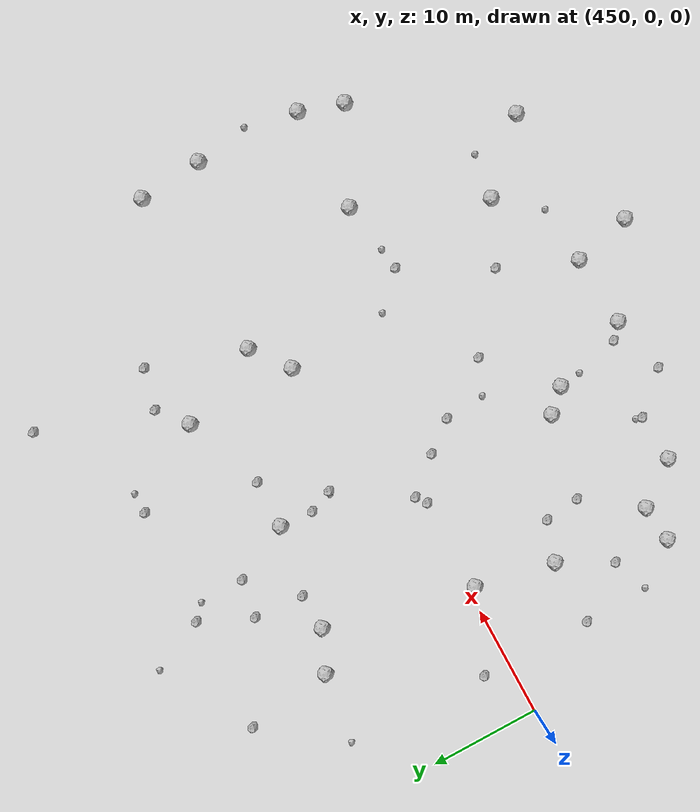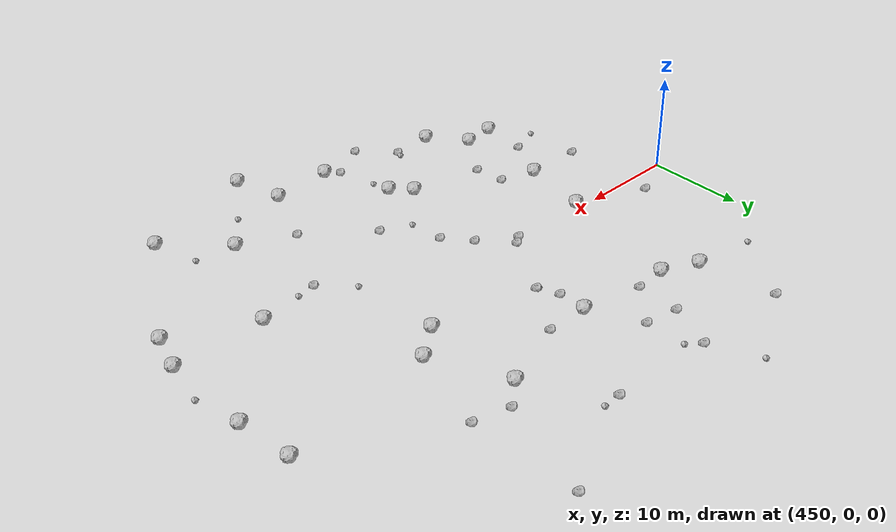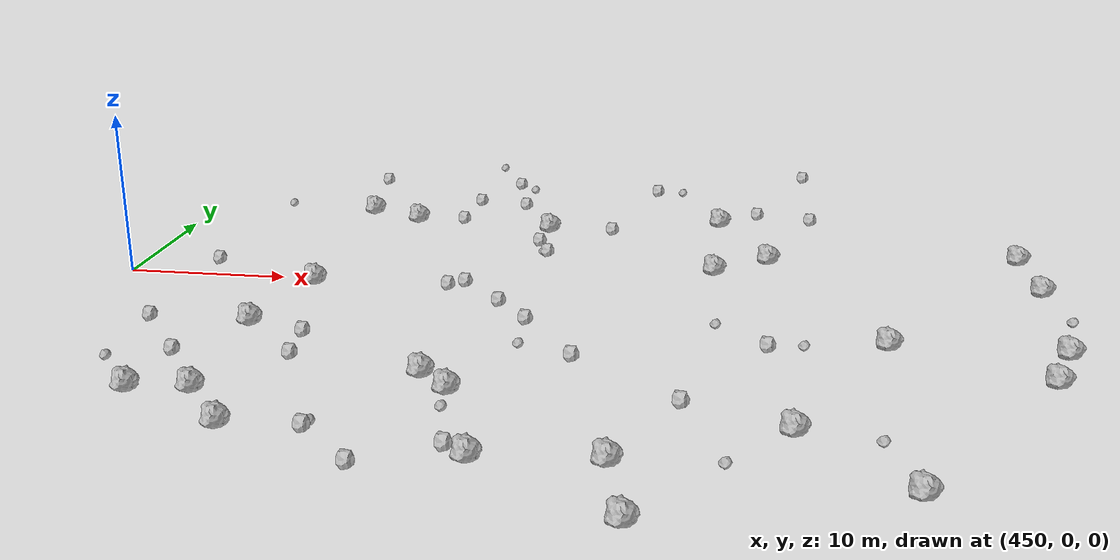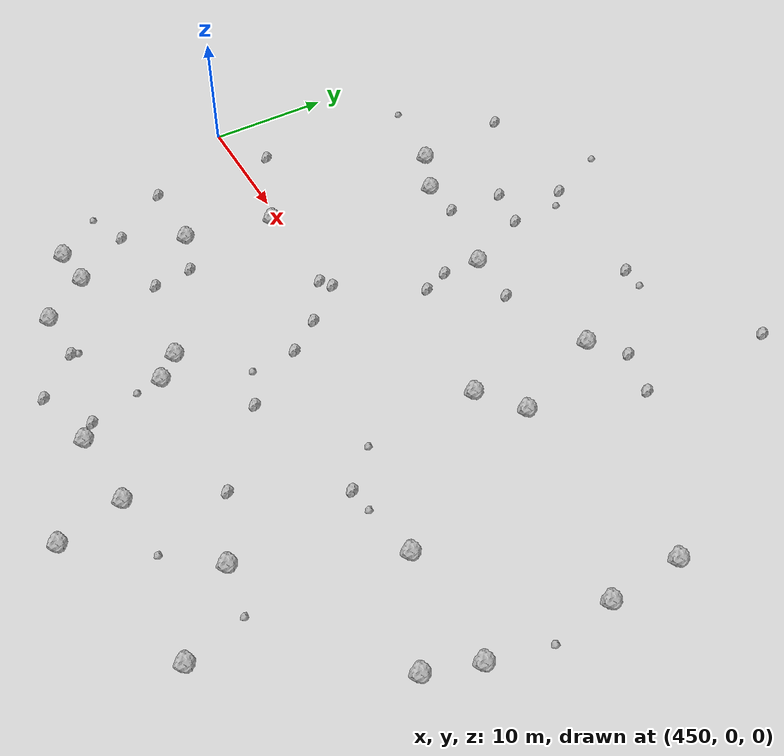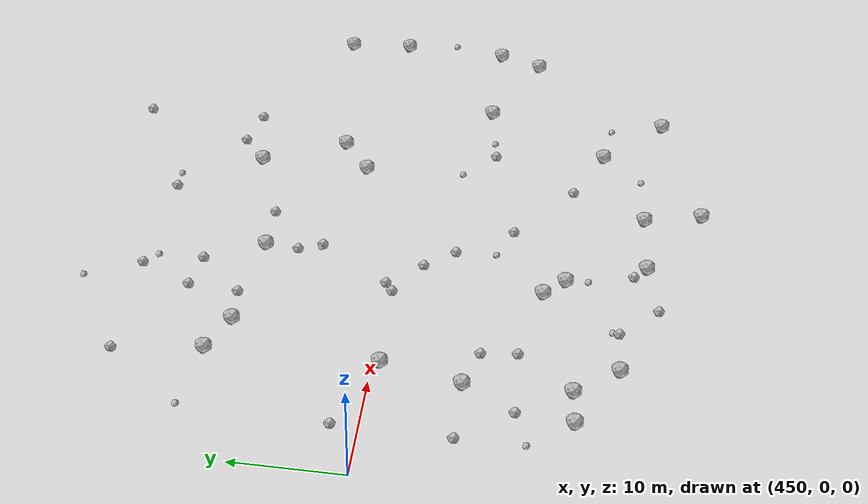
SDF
<sdf version="1.6">
 <world name="default">
  <include><uri>model://sun</uri></include>
  <model name="rock1_12_4">
   <include><uri>model://rock1</uri><pose>506.3340231970302 -6.802200655467537 0.5 0 0 0</pose></include>
  </model>
  <model name="rock1_12_5">
   <include><uri>model://rock1</uri><pose>460.76431565426384 -7.824293451113899 0.5 0 0 0</pose></include>
  </model>
  <model name="rock1_12_6">
   <include><uri>model://rock1</uri><pose>483.0821619662902 -22.322039942002686 0.5 0 0 0</pose></include>
  </model>
  <model name="rock1_12_7">
   <include><uri>model://rock1</uri><pose>506.6067973473855 2.944764519009368 0.5 0 0 0</pose></include>
  </model>
  <model name="rock1_12_8">
   <include><uri>model://rock1</uri><pose>461.16465595442673 -17.117069940406793 0.5 0 0 0</pose></include>
  </model>
  <model name="rock1_12_9">
   <include><uri>model://rock1</uri><pose>465.44990447105164 12.909858253755267 0.5 0 0 0</pose></include>
  </model>
  <model name="rock1_12_10">
   <include><uri>model://rock1</uri><pose>472.2902440631165 -13.733693562050323 0.5 0 0 0</pose></include>
  </model>
  <model name="rock1_12_11">
   <include><uri>model://rock1</uri><pose>491.52949810664325 -18.11376998937573 0.5 0 0 0</pose></include>
  </model>
  <model name="rock1_12_12">
   <include><uri>model://rock1</uri><pose>462.24759639134885 -0.6290936625679926 0.5 0 0 0</pose></include>
  </model>
  <model name="rock1_12_13">
   <include><uri>model://rock1</uri><pose>475.05254425884436 11.852452019932961 0.5 0 0 0</pose></include>
  </model>
  <model name="rock1_12_14">
   <include><uri>model://rock1</uri><pose>476.69639603079565 -22.75223849068803 0.5 0 0 0</pose></include>
  </model>
  <model name="rock1_12_15">
   <include><uri>model://rock1</uri><pose>505.01634048012335 -10.789863597331632 0.5 0 0 0</pose></include>
  </model>
  <model name="rock1_12_16">
   <include><uri>model://rock1</uri><pose>474.09728724323844 -15.615833692232448 0.5 0 0 0</pose></include>
  </model>
  <model name="rock1_12_17">
   <include><uri>model://rock1</uri><pose>464.0259234585095 -20.882900097273918 0.5 0 0 0</pose></include>
  </model>
  <model name="rock1_12_18">
   <include><uri>model://rock1</uri><pose>457.8392283503061 -17.463478047951817 0.5 0 0 0</pose></include>
  </model>
  <model name="rock1_12_19">
   <include><uri>model://rock1</uri><pose>496.993747081319 -23.597190218759916 0.5 0 0 0</pose></include>
  </model>
  <model name="rock1_12_20">
   <include><uri>model://rock1</uri><pose>484.3358996231515 -27.56423466531019 0.5 0 0 0</pose></include>
  </model>
  <model name="rock1_12_21">
   <include><uri>model://rock1</uri><pose>486.75932486918606 4.3564213047803335 0.5 0 0 0</pose></include>
  </model>
  <model name="rock1_12_22">
   <include><uri>model://rock1</uri><pose>486.7238435590314 14.559696339657542 0.5 0 0 0</pose></include>
  </model>
  <model name="rock1_12_23">
   <include><uri>model://rock1</uri><pose>496.7636083761301 -6.7817219573742555 0.5 0 0 0</pose></include>
  </model>
  <model name="rock1_12_24">
   <include><uri>model://rock1</uri><pose>506.1273130889014 8.832596398029075 0.5 0 0 0</pose></include>
  </model>
  <model name="rock1_12_25">
   <include><uri>model://rock1</uri><pose>461.78682533831943 14.549522263059274 0.5 0 0 0</pose></include>
  </model>
  <model name="rock1_12_26">
   <include><uri>model://rock1</uri><pose>490.12105970765106 6.924987787409307 0.5 0 0 0</pose></include>
  </model>
  <model name="rock2_12_0">
   <include><uri>model://rock2</uri><pose>468.7012712483471 13.120050579291906 0.3 0 0 0</pose></include>
  </model>
  <model name="rock2_12_1">
   <include><uri>model://rock2</uri><pose>464.67768074623524 -12.184106149222409 0.3 0 0 0</pose></include>
  </model>
  <model name="rock2_12_2">
   <include><uri>model://rock2</uri><pose>458.16720775756306 -12.509310738866539 0.3 0 0 0</pose></include>
  </model>
  <model name="rock2_12_3">
   <include><uri>model://rock2</uri><pose>479.73539838742363 -10.495870108130095 0.3 0 0 0</pose></include>
  </model>
  <model name="rock2_12_4">
   <include><uri>model://rock2</uri><pose>479.38903061874896 11.8461983047428 0.3 0 0 0</pose></include>
  </model>
  <model name="rock2_12_5">
   <include><uri>model://rock2</uri><pose>492.95791235997615 15.810382877074296 0.3 0 0 0</pose></include>
  </model>
  <model name="rock2_12_6">
   <include><uri>model://rock2</uri><pose>489.2578218116802 16.7196656564333 0.3 0 0 0</pose></include>
  </model>
  <model name="rock2_12_7">
   <include><uri>model://rock2</uri><pose>474.815141332466 8.819820925456284 0.3 0 0 0</pose></include>
  </model>
  <model name="rock2_12_8">
   <include><uri>model://rock2</uri><pose>468.2383879876946 -20.652919726755705 0.3 0 0 0</pose></include>
  </model>
  <model name="rock2_12_9">
   <include><uri>model://rock2</uri><pose>475.3824310405084 -21.660134492141783 0.3 0 0 0</pose></include>
  </model>
  <model name="rock2_12_10">
   <include><uri>model://rock2</uri><pose>471.58805125568233 0.24225252876220082 0.3 0 0 0</pose></include>
  </model>
  <model name="rock2_12_11">
   <include><uri>model://rock2</uri><pose>471.154665074492 22.3976663603975 0.3 0 0 0</pose></include>
  </model>
  <model name="rock2_12_12">
   <include><uri>model://rock2</uri><pose>472.47036281614453 17.095411009784655 0.3 0 0 0</pose></include>
  </model>
  <model name="rock2_12_13">
   <include><uri>model://rock2</uri><pose>476.3549440936139 -5.506041669339567 0.3 0 0 0</pose></include>
  </model>
  <model name="rock2_12_14">
   <include><uri>model://rock2</uri><pose>485.94363148996604 -15.570346035206 0.3 0 0 0</pose></include>
  </model>
  <model name="rock2_12_15">
   <include><uri>model://rock2</uri><pose>475.68558208027537 6.670286774574272 0.3 0 0 0</pose></include>
  </model>
  <model name="rock2_12_16">
   <include><uri>model://rock2</uri><pose>474.2661344301046 -2.8151895602004586 0.3 0 0 0</pose></include>
  </model>
  <model name="rock2_12_17">
   <include><uri>model://rock2</uri><pose>481.74917941777886 21.826970341942094 0.3 0 0 0</pose></include>
  </model>
  <model name="rock2_12_18">
   <include><uri>model://rock2</uri><pose>471.4259571372883 -23.979292254273066 0.3 0 0 0</pose></include>
  </model>
  <model name="rock2_12_19">
   <include><uri>model://rock2</uri><pose>464.3046833463209 -9.002245281697775 0.3 0 0 0</pose></include>
  </model>
  <model name="rock2_12_20">
   <include><uri>model://rock2</uri><pose>469.01924903765837 17.66842702186485 0.3 0 0 0</pose></include>
  </model>
  <model name="rock2_12_21">
   <include><uri>model://rock2</uri><pose>460.6106664150364 22.46335238767039 0.3 0 0 0</pose></include>
  </model>
  <model name="rock2_12_22">
   <include><uri>model://rock2</uri><pose>490.1648585656841 -7.816421676757585 0.3 0 0 0</pose></include>
  </model>
  <model name="rock2_12_23">
   <include><uri>model://rock2</uri><pose>470.64433744105145 -0.43218536405233365 0.3 0 0 0</pose></include>
  </model>
  <model name="rock2_12_24">
   <include><uri>model://rock2</uri><pose>454.8933505833279 2.3942827278604994 0.3 0 0 0</pose></include>
  </model>
  <model name="rock2_12_25">
   <include><uri>model://rock2</uri><pose>492.6464631384017 27.063210828415947 0.3 0 0 0</pose></include>
  </model>
  <model name="rock2_12_26">
   <include><uri>model://rock2</uri><pose>454.7763673338063 -7.818227324068101 0.3 0 0 0</pose></include>
  </model>
  <model name="rock3_12_0">
   <include><uri>model://rock3</uri><pose>495.58352331608387 -18.7771122395014 0.2 0 0 0</pose></include>
  </model>
  <model name="rock3_12_1">
   <include><uri>model://rock3</uri><pose>507.3591786871968 -2.0342612769262693 0.2 0 0 0</pose></include>
  </model>
  <model name="rock3_12_2">
   <include><uri>model://rock3</uri><pose>468.89863330857986 27.27207457137161 0.2 0 0 0</pose></include>
  </model>
  <model name="rock3_12_3">
   <include><uri>model://rock3</uri><pose>488.36749267576783 -21.897679018642926 0.2 0 0 0</pose></include>
  </model>
  <model name="rock3_12_4">
   <include><uri>model://rock3</uri><pose>468.35934843886224 -20.116097529871396 0.2 0 0 0</pose></include>
  </model>
  <model name="rock3_12_5">
   <include><uri>model://rock3</uri><pose>476.58283969587757 -9.209150758436785 0.2 0 0 0</pose></include>
  </model>
  <model name="rock3_12_6">
   <include><uri>model://rock3</uri><pose>487.1909442213163 -4.941319006775583 0.2 0 0 0</pose></include>
  </model>
  <model name="rock3_12_7">
   <include><uri>model://rock3</uri><pose>455.27471335574666 15.438682000569258 0.2 0 0 0</pose></include>
  </model>
  <model name="rock3_12_8">
   <include><uri>model://rock3</uri><pose>483.5998069292669 21.82150687659876 0.2 0 0 0</pose></include>
  </model>
  <model name="rock3_12_9">
   <include><uri>model://rock3</uri><pose>475.37558226732364 6.709897140853613 0.2 0 0 0</pose></include>
  </model>
  <model name="rock3_12_10">
   <include><uri>model://rock3</uri><pose>454.887286436156 -13.75866509966881 0.2 0 0 0</pose></include>
  </model>
  <model name="rock3_12_11">
   <include><uri>model://rock3</uri><pose>472.40354068305055 21.203277735285262 0.2 0 0 0</pose></include>
  </model>
  <model name="rock3_12_12">
   <include><uri>model://rock3</uri><pose>474.27225837355684 -17.688768583093125 0.2 0 0 0</pose></include>
  </model>
  <model name="rock3_12_13">
   <include><uri>model://rock3</uri><pose>492.13301457903503 -7.562679411700966 0.2 0 0 0</pose></include>
  </model>
 </world>
</sdf>
